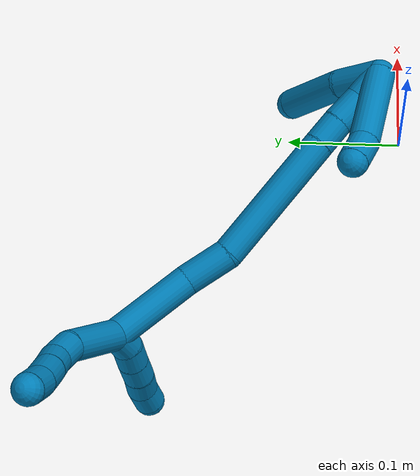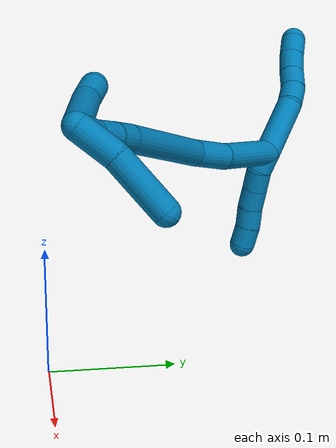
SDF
<sdf version="1.7">
 <world name="default">
  <model name="9">
   <static>0</static>
   <link name="9">
    <collision name="collision-cylinder-e_1_2_8">
     <pose>-0.00711 0.004563 0.029399 -0.153977 -0.234578 0.018178</pose>
     <geometry><cylinder><radius>0.0125</radius><length>0.061177</length></cylinder></geometry>
     <surface>
      <friction><ode><mu>1.16</mu><mu2>1.16</mu2><slip1>0</slip1><slip2>0</slip2></ode></friction>
      <contact><ode><kp>1e+06</kp><kd>1</kd><max_vel>0</max_vel><min_depth>0.001</min_depth></ode></contact>
     </surface>
    </collision>
    <visual name="visual-cylinder-e_1_2_8">
     <pose>-0.00711 0.004563 0.029399 -0.153977 -0.234578 0.018178</pose>
     <geometry><cylinder><radius>0.0125</radius><length>0.061177</length></cylinder></geometry>
     <material><ambient>0 0.490196 0.709804 1</ambient></material>
    </visual>
    <collision name="collision-cylinder-e_2_8_9">
     <pose>-0.020098 0.009374 0.069099 -0.024114 -0.518397 0.006395</pose>
     <geometry><cylinder><radius>0.0125</radius><length>0.023726</length></cylinder></geometry>
     <surface>
      <friction><ode><mu>1.16</mu><mu2>1.16</mu2><slip1>0</slip1><slip2>0</slip2></ode></friction>
      <contact><ode><kp>1e+06</kp><kd>1</kd><max_vel>0</max_vel><min_depth>0.001</min_depth></ode></contact>
     </surface>
    </collision>
    <visual name="visual-cylinder-e_2_8_9">
     <pose>-0.020098 0.009374 0.069099 -0.024114 -0.518397 0.006395</pose>
     <geometry><cylinder><radius>0.0125</radius><length>0.023726</length></cylinder></geometry>
     <material><ambient>0 0.490196 0.709804 1</ambient></material>
    </visual>
    <collision name="collision-cylinder-e_3_9_10">
     <pose>-0.030249 0.007275 0.088253 0.259213 -0.436615 -0.057813</pose>
     <geometry><cylinder><radius>0.0125</radius><length>0.020213</length></cylinder></geometry>
     <surface>
      <friction><ode><mu>1.16</mu><mu2>1.16</mu2><slip1>0</slip1><slip2>0</slip2></ode></friction>
      <contact><ode><kp>1e+06</kp><kd>1</kd><max_vel>0</max_vel><min_depth>0.001</min_depth></ode></contact>
     </surface>
    </collision>
    <visual name="visual-cylinder-e_3_9_10">
     <pose>-0.030249 0.007275 0.088253 0.259213 -0.436615 -0.057813</pose>
     <geometry><cylinder><radius>0.0125</radius><length>0.020213</length></cylinder></geometry>
     <material><ambient>0 0.490196 0.709804 1</ambient></material>
    </visual>
    <collision name="collision-cylinder-e_4_10_11">
     <pose>-0.03961 0.002906 0.107602 0.1903 -0.444152 -0.043093</pose>
     <geometry><cylinder><radius>0.0125</radius><length>0.023676</length></cylinder></geometry>
     <surface>
      <friction><ode><mu>1.16</mu><mu2>1.16</mu2><slip1>0</slip1><slip2>0</slip2></ode></friction>
      <contact><ode><kp>1e+06</kp><kd>1</kd><max_vel>0</max_vel><min_depth>0.001</min_depth></ode></contact>
     </surface>
    </collision>
    <visual name="visual-cylinder-e_4_10_11">
     <pose>-0.03961 0.002906 0.107602 0.1903 -0.444152 -0.043093</pose>
     <geometry><cylinder><radius>0.0125</radius><length>0.023676</length></cylinder></geometry>
     <material><ambient>0 0.490196 0.709804 1</ambient></material>
    </visual>
    <collision name="collision-cylinder-e_5_11_6">
     <pose>-0.047988 -0.000321 0.128106 0.1198 -0.315593 -0.019085</pose>
     <geometry><cylinder><radius>0.0125</radius><length>0.021208</length></cylinder></geometry>
     <surface>
      <friction><ode><mu>1.16</mu><mu2>1.16</mu2><slip1>0</slip1><slip2>0</slip2></ode></friction>
      <contact><ode><kp>1e+06</kp><kd>1</kd><max_vel>0</max_vel><min_depth>0.001</min_depth></ode></contact>
     </surface>
    </collision>
    <visual name="visual-cylinder-e_5_11_6">
     <pose>-0.047988 -0.000321 0.128106 0.1198 -0.315593 -0.019085</pose>
     <geometry><cylinder><radius>0.0125</radius><length>0.021208</length></cylinder></geometry>
     <material><ambient>0 0.490196 0.709804 1</ambient></material>
    </visual>
    <collision name="collision-cylinder-e_1_2_12">
     <pose>-0.003609 -0.000954 -0.009277 3.03911 -0.369274 -2.6056</pose>
     <geometry><cylinder><radius>0.0125</radius><length>0.02</length></cylinder></geometry>
     <surface>
      <friction><ode><mu>1.16</mu><mu2>1.16</mu2><slip1>0</slip1><slip2>0</slip2></ode></friction>
      <contact><ode><kp>1e+06</kp><kd>1</kd><max_vel>0</max_vel><min_depth>0.001</min_depth></ode></contact>
     </surface>
    </collision>
    <visual name="visual-cylinder-e_1_2_12">
     <pose>-0.003609 -0.000954 -0.009277 3.03911 -0.369274 -2.6056</pose>
     <geometry><cylinder><radius>0.0125</radius><length>0.02</length></cylinder></geometry>
     <material><ambient>0 0.490196 0.709804 1</ambient></material>
    </visual>
    <collision name="collision-cylinder-e_2_12_13">
     <pose>-0.01247 -0.000553 -0.026956 -2.98163 -0.552851 2.59086</pose>
     <geometry><cylinder><radius>0.0125</radius><length>0.02</length></cylinder></geometry>
     <surface>
      <friction><ode><mu>1.16</mu><mu2>1.16</mu2><slip1>0</slip1><slip2>0</slip2></ode></friction>
      <contact><ode><kp>1e+06</kp><kd>1</kd><max_vel>0</max_vel><min_depth>0.001</min_depth></ode></contact>
     </surface>
    </collision>
    <visual name="visual-cylinder-e_2_12_13">
     <pose>-0.01247 -0.000553 -0.026956 -2.98163 -0.552851 2.59086</pose>
     <geometry><cylinder><radius>0.0125</radius><length>0.02</length></cylinder></geometry>
     <material><ambient>0 0.490196 0.709804 1</ambient></material>
    </visual>
    <collision name="collision-cylinder-e_3_13_14">
     <pose>-0.022629 0.002006 -0.043986 -3.0031 -0.513049 2.62461</pose>
     <geometry><cylinder><radius>0.0125</radius><length>0.02</length></cylinder></geometry>
     <surface>
      <friction><ode><mu>1.16</mu><mu2>1.16</mu2><slip1>0</slip1><slip2>0</slip2></ode></friction>
      <contact><ode><kp>1e+06</kp><kd>1</kd><max_vel>0</max_vel><min_depth>0.001</min_depth></ode></contact>
     </surface>
    </collision>
    <visual name="visual-cylinder-e_3_13_14">
     <pose>-0.022629 0.002006 -0.043986 -3.0031 -0.513049 2.62461</pose>
     <geometry><cylinder><radius>0.0125</radius><length>0.02</length></cylinder></geometry>
     <material><ambient>0 0.490196 0.709804 1</ambient></material>
    </visual>
    <collision name="collision-cylinder-e_4_14_15">
     <pose>-0.031997 0.005518 -0.061263 -2.88062 -0.46221 2.12413</pose>
     <geometry><cylinder><radius>0.0125</radius><length>0.02</length></cylinder></geometry>
     <surface>
      <friction><ode><mu>1.16</mu><mu2>1.16</mu2><slip1>0</slip1><slip2>0</slip2></ode></friction>
      <contact><ode><kp>1e+06</kp><kd>1</kd><max_vel>0</max_vel><min_depth>0.001</min_depth></ode></contact>
     </surface>
    </collision>
    <visual name="visual-cylinder-e_4_14_15">
     <pose>-0.031997 0.005518 -0.061263 -2.88062 -0.46221 2.12413</pose>
     <geometry><cylinder><radius>0.0125</radius><length>0.02</length></cylinder></geometry>
     <material><ambient>0 0.490196 0.709804 1</ambient></material>
    </visual>
    <collision name="collision-cylinder-e_5_15_5">
     <pose>-0.041014 0.008397 -0.078793 -3.07752 -0.473276 2.87736</pose>
     <geometry><cylinder><radius>0.0125</radius><length>0.02</length></cylinder></geometry>
     <surface>
      <friction><ode><mu>1.16</mu><mu2>1.16</mu2><slip1>0</slip1><slip2>0</slip2></ode></friction>
      <contact><ode><kp>1e+06</kp><kd>1</kd><max_vel>0</max_vel><min_depth>0.001</min_depth></ode></contact>
     </surface>
    </collision>
    <visual name="visual-cylinder-e_5_15_5">
     <pose>-0.041014 0.008397 -0.078793 -3.07752 -0.473276 2.87736</pose>
     <geometry><cylinder><radius>0.0125</radius><length>0.02</length></cylinder></geometry>
     <material><ambient>0 0.490196 0.709804 1</ambient></material>
    </visual>
    <collision name="collision-cylinder-e_1_2_16">
     <pose>0.022923 -0.022966 -0.014697 2.14006 0.699074 1.17509</pose>
     <geometry><cylinder><radius>0.0125</radius><length>0.071243</length></cylinder></geometry>
     <surface>
      <friction><ode><mu>1.16</mu><mu2>1.16</mu2><slip1>0</slip1><slip2>0</slip2></ode></friction>
      <contact><ode><kp>1e+06</kp><kd>1</kd><max_vel>0</max_vel><min_depth>0.001</min_depth></ode></contact>
     </surface>
    </collision>
    <visual name="visual-cylinder-e_1_2_16">
     <pose>0.022923 -0.022966 -0.014697 2.14006 0.699074 1.17509</pose>
     <geometry><cylinder><radius>0.0125</radius><length>0.071243</length></cylinder></geometry>
     <material><ambient>0 0.490196 0.709804 1</ambient></material>
    </visual>
    <collision name="collision-cylinder-e_2_16_17">
     <pose>0.056913 -0.06086 -0.034887 1.9234 0.607917 0.845161</pose>
     <geometry><cylinder><radius>0.0125</radius><length>0.038755</length></cylinder></geometry>
     <surface>
      <friction><ode><mu>1.16</mu><mu2>1.16</mu2><slip1>0</slip1><slip2>0</slip2></ode></friction>
      <contact><ode><kp>1e+06</kp><kd>1</kd><max_vel>0</max_vel><min_depth>0.001</min_depth></ode></contact>
     </surface>
    </collision>
    <visual name="visual-cylinder-e_2_16_17">
     <pose>0.056913 -0.06086 -0.034887 1.9234 0.607917 0.845161</pose>
     <geometry><cylinder><radius>0.0125</radius><length>0.038755</length></cylinder></geometry>
     <material><ambient>0 0.490196 0.709804 1</ambient></material>
    </visual>
    <collision name="collision-cylinder-e_3_17_18">
     <pose>0.113327 -0.107753 -0.054183 1.97842 0.91597 1.28674</pose>
     <geometry><cylinder><radius>0.0125</radius><length>0.114344</length></cylinder></geometry>
     <surface>
      <friction><ode><mu>1.16</mu><mu2>1.16</mu2><slip1>0</slip1><slip2>0</slip2></ode></friction>
      <contact><ode><kp>1e+06</kp><kd>1</kd><max_vel>0</max_vel><min_depth>0.001</min_depth></ode></contact>
     </surface>
    </collision>
    <visual name="visual-cylinder-e_3_17_18">
     <pose>0.113327 -0.107753 -0.054183 1.97842 0.91597 1.28674</pose>
     <geometry><cylinder><radius>0.0125</radius><length>0.114344</length></cylinder></geometry>
     <material><ambient>0 0.490196 0.709804 1</ambient></material>
    </visual>
    <collision name="collision-cylinder-e_4_18_19">
     <pose>0.168001 -0.146062 -0.071383 2.06242 0.913754 1.37462</pose>
     <geometry><cylinder><radius>0.0125</radius><length>0.02356</length></cylinder></geometry>
     <surface>
      <friction><ode><mu>1.16</mu><mu2>1.16</mu2><slip1>0</slip1><slip2>0</slip2></ode></friction>
      <contact><ode><kp>1e+06</kp><kd>1</kd><max_vel>0</max_vel><min_depth>0.001</min_depth></ode></contact>
     </surface>
    </collision>
    <visual name="visual-cylinder-e_4_18_19">
     <pose>0.168001 -0.146062 -0.071383 2.06242 0.913754 1.37462</pose>
     <geometry><cylinder><radius>0.0125</radius><length>0.02356</length></cylinder></geometry>
     <material><ambient>0 0.490196 0.709804 1</ambient></material>
    </visual>
    <collision name="collision-cylinder-e_5_19_20">
     <pose>0.187539 -0.160283 -0.078969 2.05951 0.852607 1.29448</pose>
     <geometry><cylinder><radius>0.0125</radius><length>0.02712</length></cylinder></geometry>
     <surface>
      <friction><ode><mu>1.16</mu><mu2>1.16</mu2><slip1>0</slip1><slip2>0</slip2></ode></friction>
      <contact><ode><kp>1e+06</kp><kd>1</kd><max_vel>0</max_vel><min_depth>0.001</min_depth></ode></contact>
     </surface>
    </collision>
    <visual name="visual-cylinder-e_5_19_20">
     <pose>0.187539 -0.160283 -0.078969 2.05951 0.852607 1.29448</pose>
     <geometry><cylinder><radius>0.0125</radius><length>0.02712</length></cylinder></geometry>
     <material><ambient>0 0.490196 0.709804 1</ambient></material>
    </visual>
    <collision name="collision-cylinder-e_6_20_1">
     <pose>0.207445 -0.175943 -0.084352 1.72302 0.888741 1.01296</pose>
     <geometry><cylinder><radius>0.0125</radius><length>0.024977</length></cylinder></geometry>
     <surface>
      <friction><ode><mu>1.16</mu><mu2>1.16</mu2><slip1>0</slip1><slip2>0</slip2></ode></friction>
      <contact><ode><kp>1e+06</kp><kd>1</kd><max_vel>0</max_vel><min_depth>0.001</min_depth></ode></contact>
     </surface>
    </collision>
    <visual name="visual-cylinder-e_6_20_1">
     <pose>0.207445 -0.175943 -0.084352 1.72302 0.888741 1.01296</pose>
     <geometry><cylinder><radius>0.0125</radius><length>0.024977</length></cylinder></geometry>
     <material><ambient>0 0.490196 0.709804 1</ambient></material>
    </visual>
    <collision name="collision-cylinder-e_1_1_21">
     <pose>0.21576 -0.164984 -0.091719 -1.88904 -0.06977 0.096408</pose>
     <geometry><cylinder><radius>0.0125</radius><length>0.039559</length></cylinder></geometry>
     <surface>
      <friction><ode><mu>1.16</mu><mu2>1.16</mu2><slip1>0</slip1><slip2>0</slip2></ode></friction>
      <contact><ode><kp>1e+06</kp><kd>1</kd><max_vel>0</max_vel><min_depth>0.001</min_depth></ode></contact>
     </surface>
    </collision>
    <visual name="visual-cylinder-e_1_1_21">
     <pose>0.21576 -0.164984 -0.091719 -1.88904 -0.06977 0.096408</pose>
     <geometry><cylinder><radius>0.0125</radius><length>0.039559</length></cylinder></geometry>
     <material><ambient>0 0.490196 0.709804 1</ambient></material>
    </visual>
    <collision name="collision-cylinder-e_2_21_4">
     <pose>0.210677 -0.120006 -0.112424 -2.07656 -0.12288 0.208027</pose>
     <geometry><cylinder><radius>0.0125</radius><length>0.060441</length></cylinder></geometry>
     <surface>
      <friction><ode><mu>1.16</mu><mu2>1.16</mu2><slip1>0</slip1><slip2>0</slip2></ode></friction>
      <contact><ode><kp>1e+06</kp><kd>1</kd><max_vel>0</max_vel><min_depth>0.001</min_depth></ode></contact>
     </surface>
    </collision>
    <visual name="visual-cylinder-e_2_21_4">
     <pose>0.210677 -0.120006 -0.112424 -2.07656 -0.12288 0.208027</pose>
     <geometry><cylinder><radius>0.0125</radius><length>0.060441</length></cylinder></geometry>
     <material><ambient>0 0.490196 0.709804 1</ambient></material>
    </visual>
    <collision name="collision-cylinder-e_1_1_22">
     <pose>0.185476 -0.183949 -0.06631 0.011656 -1.02484 -0.006557</pose>
     <geometry><cylinder><radius>0.0125</radius><length>0.074097</length></cylinder></geometry>
     <surface>
      <friction><ode><mu>1.16</mu><mu2>1.16</mu2><slip1>0</slip1><slip2>0</slip2></ode></friction>
      <contact><ode><kp>1e+06</kp><kd>1</kd><max_vel>0</max_vel><min_depth>0.001</min_depth></ode></contact>
     </surface>
    </collision>
    <visual name="visual-cylinder-e_1_1_22">
     <pose>0.185476 -0.183949 -0.06631 0.011656 -1.02484 -0.006557</pose>
     <geometry><cylinder><radius>0.0125</radius><length>0.074097</length></cylinder></geometry>
     <material><ambient>0 0.490196 0.709804 1</ambient></material>
    </visual>
    <collision name="collision-cylinder-e_2_22_3">
     <pose>0.144693 -0.183028 -0.03795 -0.124868 -0.781247 0.051474</pose>
     <geometry><cylinder><radius>0.0125</radius><length>0.025903</length></cylinder></geometry>
     <surface>
      <friction><ode><mu>1.16</mu><mu2>1.16</mu2><slip1>0</slip1><slip2>0</slip2></ode></friction>
      <contact><ode><kp>1e+06</kp><kd>1</kd><max_vel>0</max_vel><min_depth>0.001</min_depth></ode></contact>
     </surface>
    </collision>
    <visual name="visual-cylinder-e_2_22_3">
     <pose>0.144693 -0.183028 -0.03795 -0.124868 -0.781247 0.051474</pose>
     <geometry><cylinder><radius>0.0125</radius><length>0.025903</length></cylinder></geometry>
     <material><ambient>0 0.490196 0.709804 1</ambient></material>
    </visual>
    <collision name="collision-sphere-3">
     <pose>0.135574 -0.181883 -0.028825 0 -0 0</pose>
     <geometry><sphere><radius>0.0125</radius></sphere></geometry>
     <surface>
      <friction><ode><mu>1.16</mu><mu2>1.16</mu2><slip1>0</slip1><slip2>0</slip2></ode></friction>
      <contact><ode><kp>1e+06</kp><kd>1</kd><max_vel>0</max_vel><min_depth>0.001</min_depth></ode></contact>
     </surface>
    </collision>
    <visual name="visual-sphere-3">
     <pose>0.135574 -0.181883 -0.028825 0 -0 0</pose>
     <geometry><sphere><radius>0.0125</radius></sphere></geometry>
     <material><ambient>0 0.490196 0.709804 1</ambient></material>
    </visual>
    <collision name="collision-sphere-22">
     <pose>0.153813 -0.184173 -0.047074 0 -0 0</pose>
     <geometry><sphere><radius>0.0125</radius></sphere></geometry>
     <surface>
      <friction><ode><mu>1.16</mu><mu2>1.16</mu2><slip1>0</slip1><slip2>0</slip2></ode></friction>
      <contact><ode><kp>1e+06</kp><kd>1</kd><max_vel>0</max_vel><min_depth>0.001</min_depth></ode></contact>
     </surface>
    </collision>
    <visual name="visual-sphere-22">
     <pose>0.153813 -0.184173 -0.047074 0 -0 0</pose>
     <geometry><sphere><radius>0.0125</radius></sphere></geometry>
     <material><ambient>0 0.490196 0.709804 1</ambient></material>
    </visual>
    <collision name="collision-sphere-4">
     <pose>0.206973 -0.093768 -0.126955 0 -0 0</pose>
     <geometry><sphere><radius>0.0125</radius></sphere></geometry>
     <surface>
      <friction><ode><mu>1.16</mu><mu2>1.16</mu2><slip1>0</slip1><slip2>0</slip2></ode></friction>
      <contact><ode><kp>1e+06</kp><kd>1</kd><max_vel>0</max_vel><min_depth>0.001</min_depth></ode></contact>
     </surface>
    </collision>
    <visual name="visual-sphere-4">
     <pose>0.206973 -0.093768 -0.126955 0 -0 0</pose>
     <geometry><sphere><radius>0.0125</radius></sphere></geometry>
     <material><ambient>0 0.490196 0.709804 1</ambient></material>
    </visual>
    <collision name="collision-sphere-21">
     <pose>0.214381 -0.146243 -0.097893 0 -0 0</pose>
     <geometry><sphere><radius>0.0125</radius></sphere></geometry>
     <surface>
      <friction><ode><mu>1.16</mu><mu2>1.16</mu2><slip1>0</slip1><slip2>0</slip2></ode></friction>
      <contact><ode><kp>1e+06</kp><kd>1</kd><max_vel>0</max_vel><min_depth>0.001</min_depth></ode></contact>
     </surface>
    </collision>
    <visual name="visual-sphere-21">
     <pose>0.214381 -0.146243 -0.097893 0 -0 0</pose>
     <geometry><sphere><radius>0.0125</radius></sphere></geometry>
     <material><ambient>0 0.490196 0.709804 1</ambient></material>
    </visual>
    <collision name="collision-sphere-1">
     <pose>0.217139 -0.183725 -0.085545 0 -0 0</pose>
     <geometry><sphere><radius>0.0125</radius></sphere></geometry>
     <surface>
      <friction><ode><mu>1.16</mu><mu2>1.16</mu2><slip1>0</slip1><slip2>0</slip2></ode></friction>
      <contact><ode><kp>1e+06</kp><kd>1</kd><max_vel>0</max_vel><min_depth>0.001</min_depth></ode></contact>
     </surface>
    </collision>
    <visual name="visual-sphere-1">
     <pose>0.217139 -0.183725 -0.085545 0 -0 0</pose>
     <geometry><sphere><radius>0.0125</radius></sphere></geometry>
     <material><ambient>0 0.490196 0.709804 1</ambient></material>
    </visual>
    <collision name="collision-sphere-6">
     <pose>-0.051279 -0.001526 0.138114 0 -0 0</pose>
     <geometry><sphere><radius>0.0125</radius></sphere></geometry>
     <surface>
      <friction><ode><mu>1.16</mu><mu2>1.16</mu2><slip1>0</slip1><slip2>0</slip2></ode></friction>
      <contact><ode><kp>1e+06</kp><kd>1</kd><max_vel>0</max_vel><min_depth>0.001</min_depth></ode></contact>
     </surface>
    </collision>
    <visual name="visual-sphere-6">
     <pose>-0.051279 -0.001526 0.138114 0 -0 0</pose>
     <geometry><sphere><radius>0.0125</radius></sphere></geometry>
     <material><ambient>0 0.490196 0.709804 1</ambient></material>
    </visual>
    <collision name="collision-sphere-11">
     <pose>-0.044697 0.000884 0.118098 0 -0 0</pose>
     <geometry><sphere><radius>0.0125</radius></sphere></geometry>
     <surface>
      <friction><ode><mu>1.16</mu><mu2>1.16</mu2><slip1>0</slip1><slip2>0</slip2></ode></friction>
      <contact><ode><kp>1e+06</kp><kd>1</kd><max_vel>0</max_vel><min_depth>0.001</min_depth></ode></contact>
     </surface>
    </collision>
    <visual name="visual-sphere-11">
     <pose>-0.044697 0.000884 0.118098 0 -0 0</pose>
     <geometry><sphere><radius>0.0125</radius></sphere></geometry>
     <material><ambient>0 0.490196 0.709804 1</ambient></material>
    </visual>
    <collision name="collision-sphere-10">
     <pose>-0.034523 0.004928 0.097105 0 -0 0</pose>
     <geometry><sphere><radius>0.0125</radius></sphere></geometry>
     <surface>
      <friction><ode><mu>1.16</mu><mu2>1.16</mu2><slip1>0</slip1><slip2>0</slip2></ode></friction>
      <contact><ode><kp>1e+06</kp><kd>1</kd><max_vel>0</max_vel><min_depth>0.001</min_depth></ode></contact>
     </surface>
    </collision>
    <visual name="visual-sphere-10">
     <pose>-0.034523 0.004928 0.097105 0 -0 0</pose>
     <geometry><sphere><radius>0.0125</radius></sphere></geometry>
     <material><ambient>0 0.490196 0.709804 1</ambient></material>
    </visual>
    <collision name="collision-sphere-9">
     <pose>-0.025976 0.009623 0.079401 0 -0 0</pose>
     <geometry><sphere><radius>0.0125</radius></sphere></geometry>
     <surface>
      <friction><ode><mu>1.16</mu><mu2>1.16</mu2><slip1>0</slip1><slip2>0</slip2></ode></friction>
      <contact><ode><kp>1e+06</kp><kd>1</kd><max_vel>0</max_vel><min_depth>0.001</min_depth></ode></contact>
     </surface>
    </collision>
    <visual name="visual-sphere-9">
     <pose>-0.025976 0.009623 0.079401 0 -0 0</pose>
     <geometry><sphere><radius>0.0125</radius></sphere></geometry>
     <material><ambient>0 0.490196 0.709804 1</ambient></material>
    </visual>
    <collision name="collision-sphere-2">
     <geometry><sphere><radius>0.0125</radius></sphere></geometry>
     <surface>
      <friction><ode><mu>1.16</mu><mu2>1.16</mu2><slip1>0</slip1><slip2>0</slip2></ode></friction>
      <contact><ode><kp>1e+06</kp><kd>1</kd><max_vel>0</max_vel><min_depth>0.001</min_depth></ode></contact>
     </surface>
    </collision>
    <visual name="visual-sphere-2">
     <geometry><sphere><radius>0.0125</radius></sphere></geometry>
     <material><ambient>0 0.490196 0.709804 1</ambient></material>
    </visual>
    <collision name="collision-sphere-19">
     <pose>0.177329 -0.152405 -0.074779 0 -0 0</pose>
     <geometry><sphere><radius>0.0125</radius></sphere></geometry>
     <surface>
      <friction><ode><mu>1.16</mu><mu2>1.16</mu2><slip1>0</slip1><slip2>0</slip2></ode></friction>
      <contact><ode><kp>1e+06</kp><kd>1</kd><max_vel>0</max_vel><min_depth>0.001</min_depth></ode></contact>
     </surface>
    </collision>
    <visual name="visual-sphere-19">
     <pose>0.177329 -0.152405 -0.074779 0 -0 0</pose>
     <geometry><sphere><radius>0.0125</radius></sphere></geometry>
     <material><ambient>0 0.490196 0.709804 1</ambient></material>
    </visual>
    <collision name="collision-sphere-8">
     <pose>-0.01422 0.009126 0.058798 0 -0 0</pose>
     <geometry><sphere><radius>0.0125</radius></sphere></geometry>
     <surface>
      <friction><ode><mu>1.16</mu><mu2>1.16</mu2><slip1>0</slip1><slip2>0</slip2></ode></friction>
      <contact><ode><kp>1e+06</kp><kd>1</kd><max_vel>0</max_vel><min_depth>0.001</min_depth></ode></contact>
     </surface>
    </collision>
    <visual name="visual-sphere-8">
     <pose>-0.01422 0.009126 0.058798 0 -0 0</pose>
     <geometry><sphere><radius>0.0125</radius></sphere></geometry>
     <material><ambient>0 0.490196 0.709804 1</ambient></material>
    </visual>
    <collision name="collision-sphere-12">
     <pose>-0.007219 -0.001908 -0.018554 0 -0 0</pose>
     <geometry><sphere><radius>0.0125</radius></sphere></geometry>
     <surface>
      <friction><ode><mu>1.16</mu><mu2>1.16</mu2><slip1>0</slip1><slip2>0</slip2></ode></friction>
      <contact><ode><kp>1e+06</kp><kd>1</kd><max_vel>0</max_vel><min_depth>0.001</min_depth></ode></contact>
     </surface>
    </collision>
    <visual name="visual-sphere-12">
     <pose>-0.007219 -0.001908 -0.018554 0 -0 0</pose>
     <geometry><sphere><radius>0.0125</radius></sphere></geometry>
     <material><ambient>0 0.490196 0.709804 1</ambient></material>
    </visual>
    <collision name="collision-sphere-13">
     <pose>-0.017721 0.000803 -0.035357 0 -0 0</pose>
     <geometry><sphere><radius>0.0125</radius></sphere></geometry>
     <surface>
      <friction><ode><mu>1.16</mu><mu2>1.16</mu2><slip1>0</slip1><slip2>0</slip2></ode></friction>
      <contact><ode><kp>1e+06</kp><kd>1</kd><max_vel>0</max_vel><min_depth>0.001</min_depth></ode></contact>
     </surface>
    </collision>
    <visual name="visual-sphere-13">
     <pose>-0.017721 0.000803 -0.035357 0 -0 0</pose>
     <geometry><sphere><radius>0.0125</radius></sphere></geometry>
     <material><ambient>0 0.490196 0.709804 1</ambient></material>
    </visual>
    <collision name="collision-sphere-14">
     <pose>-0.027538 0.003208 -0.052615 0 -0 0</pose>
     <geometry><sphere><radius>0.0125</radius></sphere></geometry>
     <surface>
      <friction><ode><mu>1.16</mu><mu2>1.16</mu2><slip1>0</slip1><slip2>0</slip2></ode></friction>
      <contact><ode><kp>1e+06</kp><kd>1</kd><max_vel>0</max_vel><min_depth>0.001</min_depth></ode></contact>
     </surface>
    </collision>
    <visual name="visual-sphere-14">
     <pose>-0.027538 0.003208 -0.052615 0 -0 0</pose>
     <geometry><sphere><radius>0.0125</radius></sphere></geometry>
     <material><ambient>0 0.490196 0.709804 1</ambient></material>
    </visual>
    <collision name="collision-sphere-15">
     <pose>-0.036456 0.007827 -0.069911 0 -0 0</pose>
     <geometry><sphere><radius>0.0125</radius></sphere></geometry>
     <surface>
      <friction><ode><mu>1.16</mu><mu2>1.16</mu2><slip1>0</slip1><slip2>0</slip2></ode></friction>
      <contact><ode><kp>1e+06</kp><kd>1</kd><max_vel>0</max_vel><min_depth>0.001</min_depth></ode></contact>
     </surface>
    </collision>
    <visual name="visual-sphere-15">
     <pose>-0.036456 0.007827 -0.069911 0 -0 0</pose>
     <geometry><sphere><radius>0.0125</radius></sphere></geometry>
     <material><ambient>0 0.490196 0.709804 1</ambient></material>
    </visual>
    <collision name="collision-sphere-5">
     <pose>-0.045572 0.008967 -0.087676 0 -0 0</pose>
     <geometry><sphere><radius>0.0125</radius></sphere></geometry>
     <surface>
      <friction><ode><mu>1.16</mu><mu2>1.16</mu2><slip1>0</slip1><slip2>0</slip2></ode></friction>
      <contact><ode><kp>1e+06</kp><kd>1</kd><max_vel>0</max_vel><min_depth>0.001</min_depth></ode></contact>
     </surface>
    </collision>
    <visual name="visual-sphere-5">
     <pose>-0.045572 0.008967 -0.087676 0 -0 0</pose>
     <geometry><sphere><radius>0.0125</radius></sphere></geometry>
     <material><ambient>0 0.490196 0.709804 1</ambient></material>
    </visual>
    <collision name="collision-sphere-16">
     <pose>0.045846 -0.045933 -0.029394 0 -0 0</pose>
     <geometry><sphere><radius>0.0125</radius></sphere></geometry>
     <surface>
      <friction><ode><mu>1.16</mu><mu2>1.16</mu2><slip1>0</slip1><slip2>0</slip2></ode></friction>
      <contact><ode><kp>1e+06</kp><kd>1</kd><max_vel>0</max_vel><min_depth>0.001</min_depth></ode></contact>
     </surface>
    </collision>
    <visual name="visual-sphere-16">
     <pose>0.045846 -0.045933 -0.029394 0 -0 0</pose>
     <geometry><sphere><radius>0.0125</radius></sphere></geometry>
     <material><ambient>0 0.490196 0.709804 1</ambient></material>
    </visual>
    <collision name="collision-sphere-17">
     <pose>0.067981 -0.075787 -0.04038 0 -0 0</pose>
     <geometry><sphere><radius>0.0125</radius></sphere></geometry>
     <surface>
      <friction><ode><mu>1.16</mu><mu2>1.16</mu2><slip1>0</slip1><slip2>0</slip2></ode></friction>
      <contact><ode><kp>1e+06</kp><kd>1</kd><max_vel>0</max_vel><min_depth>0.001</min_depth></ode></contact>
     </surface>
    </collision>
    <visual name="visual-sphere-17">
     <pose>0.067981 -0.075787 -0.04038 0 -0 0</pose>
     <geometry><sphere><radius>0.0125</radius></sphere></geometry>
     <material><ambient>0 0.490196 0.709804 1</ambient></material>
    </visual>
    <collision name="collision-sphere-18">
     <pose>0.158673 -0.139719 -0.067986 0 -0 0</pose>
     <geometry><sphere><radius>0.0125</radius></sphere></geometry>
     <surface>
      <friction><ode><mu>1.16</mu><mu2>1.16</mu2><slip1>0</slip1><slip2>0</slip2></ode></friction>
      <contact><ode><kp>1e+06</kp><kd>1</kd><max_vel>0</max_vel><min_depth>0.001</min_depth></ode></contact>
     </surface>
    </collision>
    <visual name="visual-sphere-18">
     <pose>0.158673 -0.139719 -0.067986 0 -0 0</pose>
     <geometry><sphere><radius>0.0125</radius></sphere></geometry>
     <material><ambient>0 0.490196 0.709804 1</ambient></material>
    </visual>
    <collision name="collision-sphere-20">
     <pose>0.19775 -0.168162 -0.083158 0 -0 0</pose>
     <geometry><sphere><radius>0.0125</radius></sphere></geometry>
     <surface>
      <friction><ode><mu>1.16</mu><mu2>1.16</mu2><slip1>0</slip1><slip2>0</slip2></ode></friction>
      <contact><ode><kp>1e+06</kp><kd>1</kd><max_vel>0</max_vel><min_depth>0.001</min_depth></ode></contact>
     </surface>
    </collision>
    <visual name="visual-sphere-20">
     <pose>0.19775 -0.168162 -0.083158 0 -0 0</pose>
     <geometry><sphere><radius>0.0125</radius></sphere></geometry>
     <material><ambient>0 0.490196 0.709804 1</ambient></material>
    </visual>
    <inertial>
     <pose>0.085426 -0.079534 -0.033018 0 -0 0</pose>
     <mass>0.75</mass>
     <inertia>
      <ixx>0.000223</ixx>
      <ixy>0</ixy>
      <ixz>0</ixz>
      <iyy>0.00026</iyy>
      <iyz>0</iyz>
      <izz>-1.2e-05</izz>
     </inertia>
    </inertial>
   </link>
   <pose>-0.264732 0.232088 0.107627 -0.37026 -0.415871 0.002533</pose>
  </model>
 </world>
</sdf>
